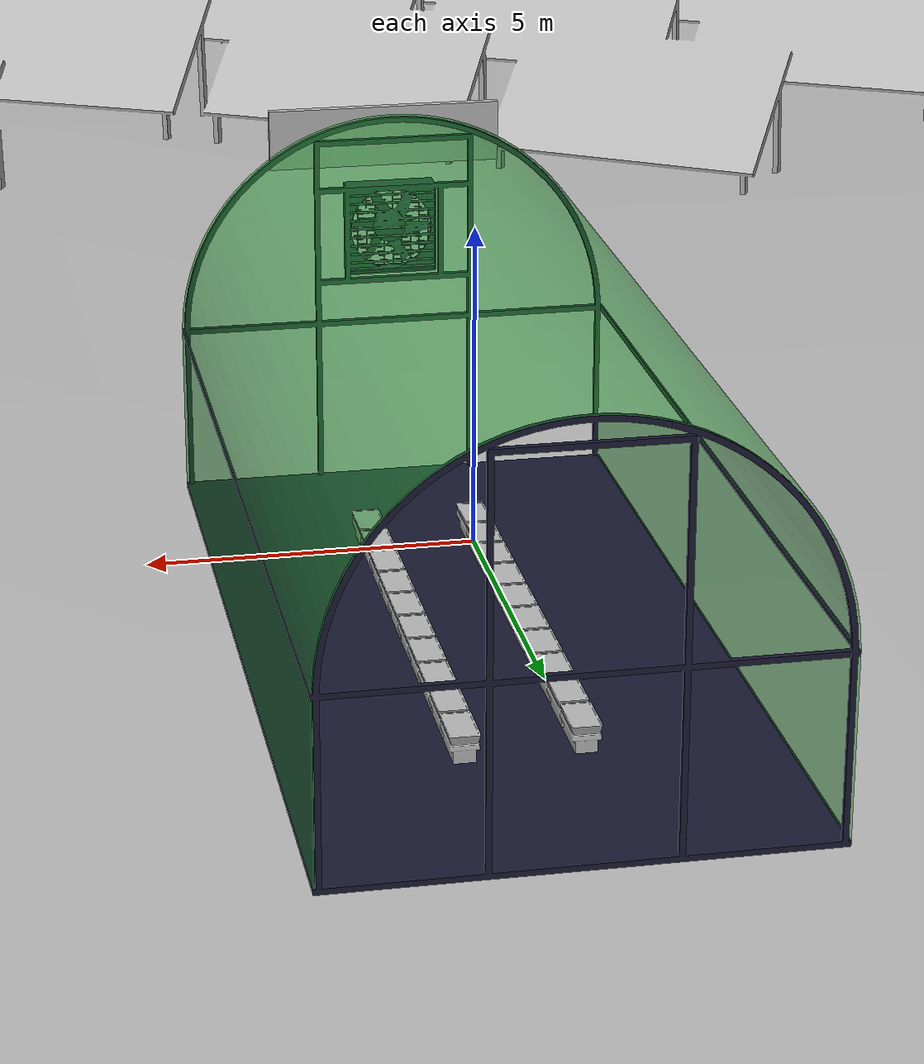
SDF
<?xml version="1.0"?>
<sdf version="1.6">

	<world name="default">

    <light name="light0" type="directional">
      <pose frame="">0 -18.818 8 0.75 -0 0</pose>
      <diffuse>0.5 0.5 0.5 1</diffuse>
      <specular>0.1 0.1 0.1 1</specular>
      <direction>0.1 0.1 -0.9</direction>
      <attenuation>
        <range>20</range>
        <constant>0.5</constant>
        <linear>0.01</linear>
        <quadratic>0.001</quadratic>
      </attenuation>
      <cast_shadows>0</cast_shadows>
    </light>

    <light name="light1" type="directional">
      <pose frame="">0 -1.26453 6 0 -0 0</pose>
      <diffuse>0.5 0.5 0.5 1</diffuse>
      <specular>0.1 0.1 0.1 1</specular>
      <direction>0.1 0.1 -0.9</direction>
      <attenuation>
        <range>20</range>
        <constant>0.5</constant>
        <linear>0.01</linear>
        <quadratic>0.001</quadratic>
      </attenuation>
      <cast_shadows>0</cast_shadows>
    </light>

    <light name="light2" type="directional">
      <pose frame="">>0 7.3198 6 0 -0 0</pose>
      <diffuse>0.5 0.5 0.5 1</diffuse>
      <specular>0.1 0.1 0.1 1</specular>
      <direction>0.1 0.1 -0.9</direction>
      <attenuation>
        <range>20</range>
        <constant>0.5</constant>
        <linear>0.01</linear>
        <quadratic>0.001</quadratic>
      </attenuation>
      <cast_shadows>0</cast_shadows>
    </light>

    <light name="light3" type="directional">
      <pose frame="">3.9239 1.64974 4 0 1.2 0</pose>
      <diffuse>0.5 0.5 0.5 1</diffuse>
      <specular>0.1 0.1 0.1 1</specular>
      <direction>0.1 0.1 -0.9</direction>
      <attenuation>
        <range>20</range>
        <constant>0.5</constant>
        <linear>0.01</linear>
        <quadratic>0.001</quadratic>
      </attenuation>
      <cast_shadows>0</cast_shadows>
    </light>

    <light name="light4" type="directional">
      <pose frame="">-2.5 4.649 4 0 -0.95 0</pose>
      <diffuse>0.5 0.5 0.5 1</diffuse>
      <specular>0.1 0.1 0.1 1</specular>
      <direction>0.1 0.1 -0.9</direction>
      <attenuation>
        <range>20</range>
        <constant>0.5</constant>
        <linear>0.01</linear>
        <quadratic>0.001</quadratic>
      </attenuation>
      <cast_shadows>0</cast_shadows>
    </light>

    <light name="light5" type="directional">
      <pose frame="">0.454419 12.4783 5 -0.8 0 0</pose>
      <diffuse>0.5 0.5 0.5 1</diffuse>
      <specular>0.1 0.1 0.1 1</specular>
      <direction>0.1 0.1 -0.9</direction>
      <attenuation>
        <range>20</range>
        <constant>0.5</constant>
        <linear>0.01</linear>
        <quadratic>0.001</quadratic>
      </attenuation>
      <cast_shadows>0</cast_shadows>
    </light>

		<scene>
		<shadows>false</shadows>
		<grid>false</grid>
		<sky>
		<clouds>
		  <speed>4</speed>
		</clouds>
		</sky>
		</scene>

		<include>
		<uri>model://farm1</uri>
		<pose>1.424045 -8.25 0.15 -0.02 0.029 0</pose>
		</include>

		<include>
		<uri>model://green_house</uri>
		<pose>10.523 -2.987 0.1 1.57159 -0.001593 -3.14159</pose>
		</include>

		<include>
		<uri>model://trough</uri>
		<name>trough00</name>
		<pose>0 0 0.09 1.57 0 1.57</pose>
		</include>

		<include>
		<uri>model://trough</uri>
		<name>trough01</name>
		<pose>0 0.8 0.09 1.57 0 1.57</pose>
		</include>

		<include>
		<uri>model://trough</uri>
		<name>trough02</name>
		<pose>0 1.6 0.09 1.57 0 1.57</pose>
		</include>

		<include>
		<uri>model://trough</uri>
		<name>trough03</name>
		<pose>0 2.4 0.09 1.57 0 1.57</pose>
		</include>

		<include>
		<uri>model://trough</uri>
		<name>trough04</name>
		<pose>0 3.2 0.09 1.57 0 1.57</pose>
		</include>

		<include>
		<uri>model://trough</uri>
		<name>trough05</name>
		<pose>0 4.0 0.09 1.57 0 1.57</pose>
		</include>

		<include>
		<uri>model://trough</uri>
		<name>trough06</name>
		<pose>0 4.8 0.09 1.57 0 1.57</pose>
		</include>

		<include>
		<uri>model://trough</uri>
		<name>trough07</name>
		<pose>0 5.6 0.09 1.57 0 1.57</pose>
		</include>

		<include>
		<uri>model://trough</uri>
		<name>trough08</name>
		<pose>0 6.4 0.09 1.57 0 1.57</pose>
		</include>

		<include>
		<uri>model://trough</uri>
		<name>trough09</name>
		<pose>0 7.2 0.09 1.57 0 1.57</pose>
		</include>

		<include>
		<uri>model://trough</uri>
		<name>trough10</name>
		<pose>1.62 0 0.09 1.57 0 1.57</pose>
		</include>

		<include>
		<uri>model://trough</uri>
		<name>trough11</name>
		<pose>1.62 0.8 0.09 1.57 0 1.57</pose>
		</include>

		<include>
		<uri>model://trough</uri>
		<name>trough12</name>
		<pose>1.62 1.6 0.09 1.57 0 1.57</pose>
		</include>

		<include>
		<uri>model://trough</uri>
		<name>trough13</name>
		<pose>1.62 2.4 0.09 1.57 0 1.57</pose>
		</include>

		<include>
		<uri>model://trough</uri>
		<name>trough14</name>
		<pose>1.62 3.2 0.09 1.57 0 1.57</pose>
		</include>

		<include>
		<uri>model://trough</uri>
		<name>trough15</name>
		<pose>1.62 4.0 0.09 1.57 0 1.57</pose>
		</include>

		<include>
		<uri>model://trough</uri>
		<name>trough16</name>
		<pose>1.62 4.8 0.09 1.57 0 1.57</pose>
		</include>

		<include>
		<uri>model://trough</uri>
		<name>trough17</name>
		<pose>1.62 5.6 0.09 1.57 0 1.57</pose>
		</include>

		<include>
		<uri>model://trough</uri>
		<name>trough18</name>
		<pose>1.62 6.4 0.09 1.57 0 1.57</pose>
		</include>

		<include>
		<uri>model://trough</uri>
		<name>trough19</name>
		<pose>1.62 7.2 0.09 1.57 0 1.57</pose>
		</include>

	</world>
</sdf>

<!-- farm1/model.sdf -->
<sdf version="1.6">
  <model name="farm">
    <static>true</static>
    <link name="link">
      <collision name="colision1">
        <pose>0 0 0 0 0 0 </pose>
          <geometry>
            <box><size>2.32 1 1</size></box>
          </geometry>

      </collision>

      <visual name="visual1">
        <cast_shadows>false</cast_shadows>
	<pose> 0 0 0 0 0 0</pose>
        <geometry>
          <mesh>
            <uri>model://farm1/meshes/agriculture_world.dae</uri>

          </mesh>
        </geometry>
      </visual>

    </link>
  </model>
</sdf>

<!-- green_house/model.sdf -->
<sdf version="1.6">
  <model name="green_house">
    <static>true</static>

    <link name="link">
      <collision name="collision">
        <geometry>
          <mesh>
             <scale>0.001 0.001 0.001</scale>
            <uri>file://green_house/meshes/greenhouse_eyantra_glass.stl</uri>
          </mesh>
        </geometry>
      </collision>
      <visual name="branch">
        <geometry>
          <mesh>
                <scale>0.001 0.001 0.001</scale>
            <uri>file://green_house/meshes/greenhouse_eyantra_glass.stl</uri>

          </mesh>
        </geometry>

<material>
  <script>
    <name>Gazebo/GreenTransparent</name>
    <uri>file://media/materials/scripts/gazebo.material</uri>
  </script>
</material>

      </visual>
    </link>

    <link name="link2">
      <collision name="collision2">
        <geometry>
          <mesh>
             <scale>0.001 0.001 0.001</scale>
            <uri>file://green_house/meshes/greenhouse_eyantra_skeleton.stl</uri>
          </mesh>
        </geometry>
      </collision>
      <visual name="branch2">
        <geometry>
          <mesh>
                <scale>0.001 0.001 0.001</scale>
            <uri>file://green_house/meshes/greenhouse_eyantra_skeleton.stl</uri>

          </mesh>
        </geometry>

      <material>
          <ambient>0.1 0.1 0.1 1</ambient>
          <diffuse>0.1 0.1 0.2 1</diffuse>
          <specular>0 0 0 0</specular>
          <emissive>0 0 0 1</emissive>
        </material>

      </visual>
    </link>

    <link name="link3">
 <pose>9.7 5.5 -0.2 0 3.14 0</pose>
      <collision name="logo">
        <geometry>
          <mesh>
       <scale>400 400 400</scale>
            <uri>file://green_house/meshes/logo2.dae</uri>
          </mesh>
        </geometry>
      </collision>
      <visual name="logo_c">
        <geometry>
          <mesh>
  <scale>400 400 400</scale>
            <uri>file://green_house/meshes/logo2.dae</uri>

          </mesh>
        </geometry>

      </visual>
    </link>

        <joint name="logo" type="fixed">
            <pose>0 0 0 0 0 0</pose>
            <child>link3</child>
            <parent>link2</parent>

        </joint>

  </model>
</sdf>

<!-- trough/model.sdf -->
<sdf version="1.6">
    <model name="trough">
	   <static>true</static>
      <link name="trough_link">

        <visual name="visual">
          <geometry>
            <mesh><uri>model://trough/meshes/truf_brick.obj</uri></mesh>
          </geometry>
        </visual>

        <collision name="collision">
          <pose>0 0.3 0 0 0 0</pose>
          <geometry>
          <box>
            <size>0.75 0.2 0.42</size>
          </box>
           </geometry>
        </collision>
      </link>

    </model>
</sdf>
